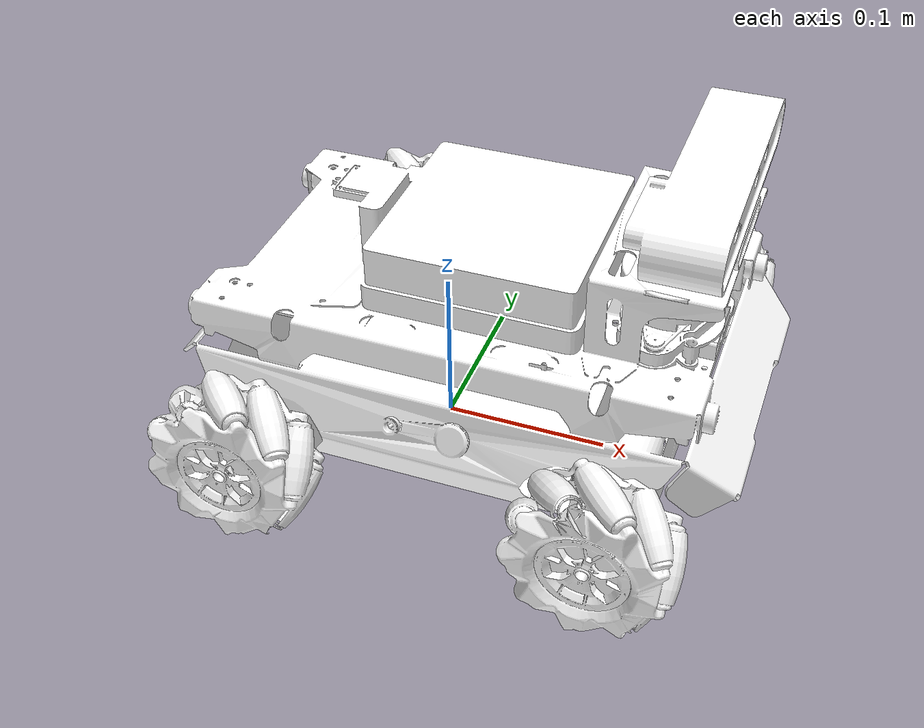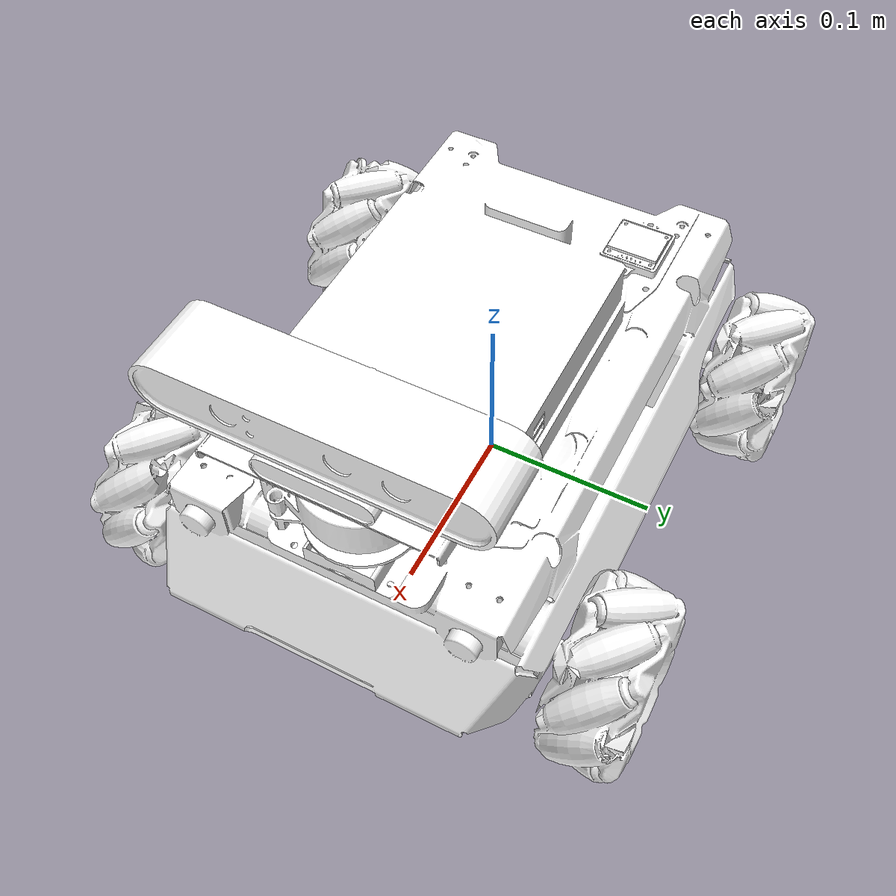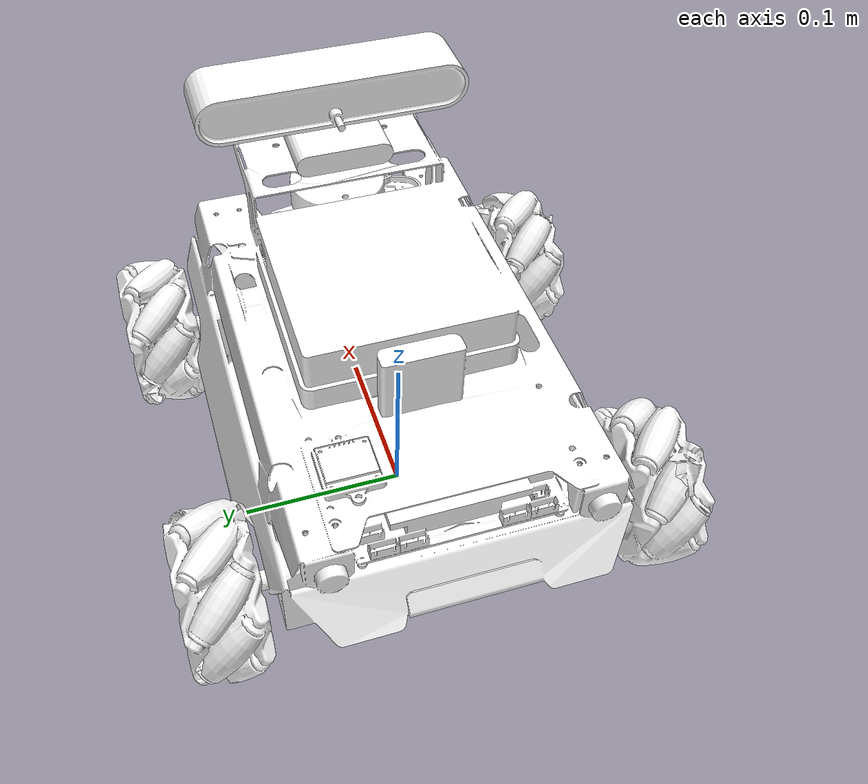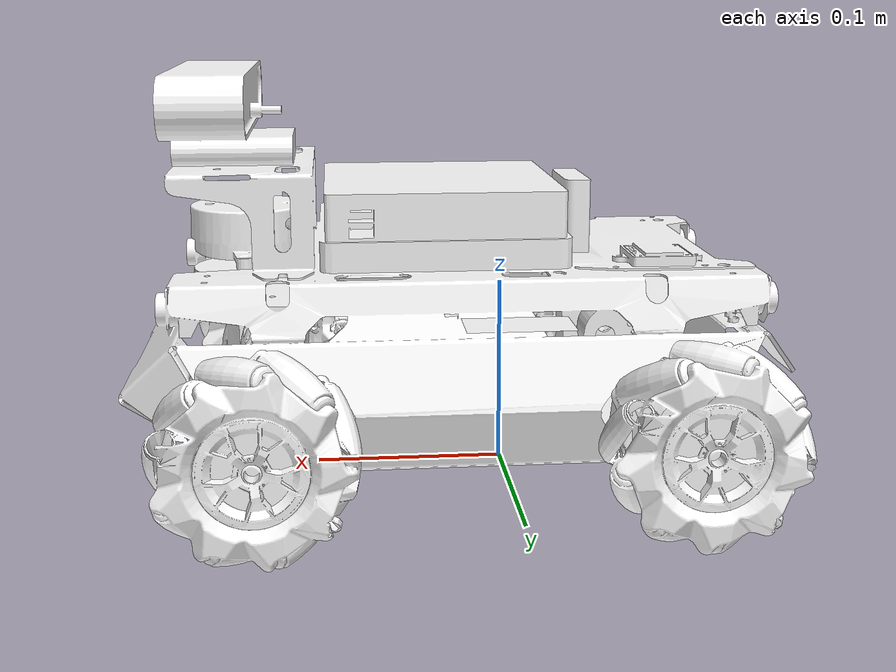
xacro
<?xml version="1.0" encoding="utf-8"?>
<robot name="mowen2" xmlns:xacro="http://www.ros.org/wiki/xacro">
  <!-- mowen2 - mecanum wheel robot URDF (xacro version) -->
  <!-- Namespace isolation is done via robot_state_publisher tf_prefix -->

  <xacro:arg name="robot_namespace" default=""/>
  <xacro:include filename="$(find robot_vs)/config/mowen2_param/mowen2.gazebo.xacro"/>

  <material name="White">
    <color rgba="1 1 1 1"/>
  </material>

  <!-- common link macro (visual + collision + inertial) -->
  <xacro:macro name="common_link" params="name material path *origin">
    <link name="${name}">
      <visual>
        <geometry>
          <mesh filename="package://robot_vs/config/mowen2_param/meshes/${path}/${name}.STL"/>
        </geometry>
        <origin xyz="0 0 0" rpy="0 0 0"/>
        <material name="${material}"/>
      </visual>
      <collision>
        <geometry>
          <mesh filename="package://robot_vs/config/mowen2_param/meshes/${path}/${name}.STL"/>
        </geometry>
        <origin xyz="0 0 0" rpy="0 0 0"/>
      </collision>
      <xacro:insert_block name="origin"/>
    </link>
  </xacro:macro>

  <!-- continuous joint macro (for wheels) -->
  <xacro:macro name="continuous_joint" params="name parent child xyz rpy axis">
    <joint name="${name}" type="continuous">
      <parent link="${parent}"/>
      <child link="${child}"/>
      <origin xyz="${xyz}" rpy="${rpy}"/>
      <axis xyz="${axis}"/>
      <limit lower="${-pi}" upper="${pi}" effort="100" velocity="1"/>
    </joint>
  </xacro:macro>

  <!-- fixed joint macro -->
  <xacro:macro name="fixed_joint" params="name parent child xyz rpy">
    <joint name="${name}" type="fixed">
      <parent link="${parent}"/>
      <child link="${child}"/>
      <origin xyz="${xyz}" rpy="${rpy}"/>
    </joint>
  </xacro:macro>

  <!-- ===== BASE ===== -->
  <link name="base_footprint"/>

  <common_link name="base_link" material="White" path="mecanum">
    <inertial>
      <origin xyz="-0.0718509386127855 0.00738215784490594 0.119676355791491" rpy="0 0 0"/>
      <mass value="0.486218814966626"/>
      <inertia ixx="0.00196277727666921" ixy="2.50447049446755E-07" ixz="0.000140534767811098"
               iyy="0.00457256033711368" iyz="2.68618064993882E-07" izz="0.00493927269870476"/>
    </inertial>
  </common_link>

  <fixed_joint name="base_joint" parent="base_footprint" child="base_link"
               xyz="0.0 0.0 0.0" rpy="0 0 0"/>

  <!-- ===== 4 MECANUM WHEELS ===== -->

  <common_link name="front_right_wheel" material="White" path="mecanum">
    <inertial>
      <origin xyz="-0.199063466201963 0.152786006806629 0.0710729630656461" rpy="0 0 0"/>
      <mass value="0.051532"/>
      <inertia ixx="1.4595E-05" ixy="-4.3975E-10" ixz="4.415E-10"
               iyy="1.4594E-05" iyz="-1.7476E-09" izz="2.4264E-05"/>
    </inertial>
  </common_link>
  <continuous_joint name="front_right_joint" parent="base_link" child="front_right_wheel"
                    xyz="0.12721 -0.1454 0.048603" rpy="0 0 0" axis="0 1 0"/>

  <common_link name="front_left_wheel" material="White" path="mecanum">
    <inertial>
      <origin xyz="-0.199119784807379 -0.138021691116814 0.071103918576079" rpy="0 0 0"/>
      <mass value="0.051543"/>
      <inertia ixx="1.4597E-05" ixy="-4.7945E-10" ixz="-2.4786E-10"
               iyy="1.4598E-05" iyz="1.7972E-09" izz="2.4267E-05"/>
    </inertial>
  </common_link>
  <continuous_joint name="front_left_joint" parent="base_link" child="front_left_wheel"
                    xyz="0.12727 0.1454 0.048572" rpy="0 0 0" axis="0 1 0"/>

  <common_link name="back_right_wheel" material="White" path="mecanum">
    <inertial>
      <origin xyz="0.00792558007520176 0.152786006806629 0.0712769954892365" rpy="0 0 0"/>
      <mass value="0.051540174053366"/>
      <inertia ixx="1.45974152250002E-05" ixy="1.94850559178397E-10" ixz="-1.61846387282284E-09"
               iyy="1.4596501955693E-05" iyz="-6.27904057423818E-10" izz="2.42663091380451E-05"/>
    </inertial>
  </common_link>
  <continuous_joint name="back_right_joint" parent="base_link" child="back_right_wheel"
                    xyz="-0.079777 -0.1454 0.048399" rpy="0 0 0" axis="0 1 0"/>

  <common_link name="back_left_wheel" material="White" path="mecanum">
    <inertial>
      <origin xyz="0.00789687485202048 -0.138021691116814 0.0710896498186508" rpy="0 0 0"/>
      <mass value="0.0515309299357028"/>
      <inertia ixx="1.45942986129926E-05" ixy="-3.19787215398093E-10" ixz="1.74943062058915E-09"
               iyy="1.45948727598913E-05" iyz="1.61769812110049E-10" izz="2.4263683888153E-05"/>
    </inertial>
  </common_link>
  <continuous_joint name="back_left_joint" parent="base_link" child="back_left_wheel"
                    xyz="-0.079748 0.1454 0.048587" rpy="0 0 0" axis="0 1 0"/>

  <!-- ===== SENSORS ===== -->

  <common_link name="imu_link" material="White" path="sensor">
    <inertial>
      <origin xyz="-0.216043303058216 -0.0052321578449091 -0.0162763557914886" rpy="0 0 0"/>
      <mass value="0"/>
      <inertia ixx="0" ixy="0" ixz="0" iyy="0" iyz="0" izz="0"/>
    </inertial>
  </common_link>
  <fixed_joint name="base_imu" parent="base_link" child="imu_link"
               xyz="0.14419 0.00215 0.1034" rpy="3.1416 0 0"/>

  <common_link name="camera_link" material="White" path="sensor">
    <inertial>
      <origin xyz="-0.220993303058215 0.00787952902341162 -0.0803035792325282" rpy="0 0 0"/>
      <mass value="0"/>
      <inertia ixx="0" ixy="0" ixz="0" iyy="0" iyz="0" izz="0"/>
    </inertial>
  </common_link>
  <fixed_joint name="camera_joint" parent="base_link" child="camera_link"
               xyz="0.14914 -0.00049737 0.19998" rpy="0 0 0"/>

  <common_link name="laser_link" material="White" path="sensor">
    <inertial>
      <origin xyz="-0.205591625169509 0.00738215784490645 -0.0163143442085112" rpy="0 0 0"/>
      <mass value="0.0483909504209895"/>
      <inertia ixx="1.58456966399128E-05" ixy="-4.23913983850005E-07" ixz="-2.09597897904374E-07"
               iyy="3.89262522903605E-05" iyz="3.24809725932687E-07" izz="4.86230801106223E-05"/>
    </inertial>
  </common_link>
  <fixed_joint name="laser_joint" parent="base_link" child="laser_link"
               xyz="0.13374 0 0.13599" rpy="0 0 0"/>
</robot>
